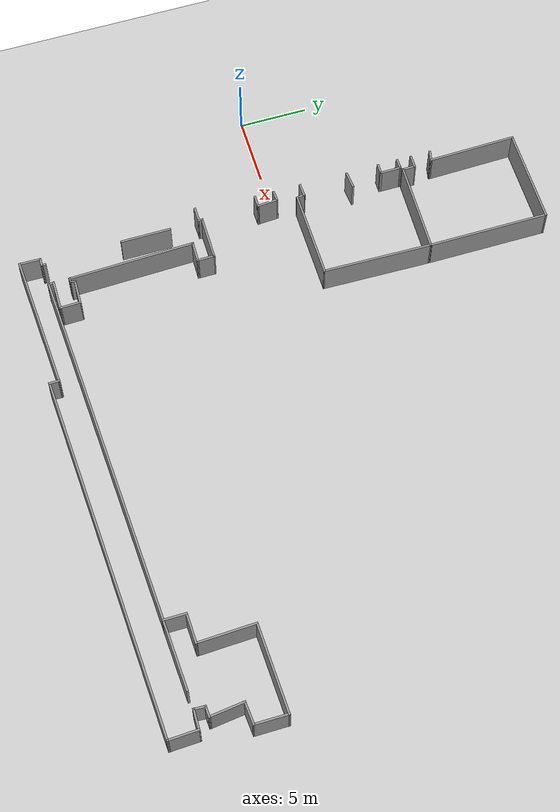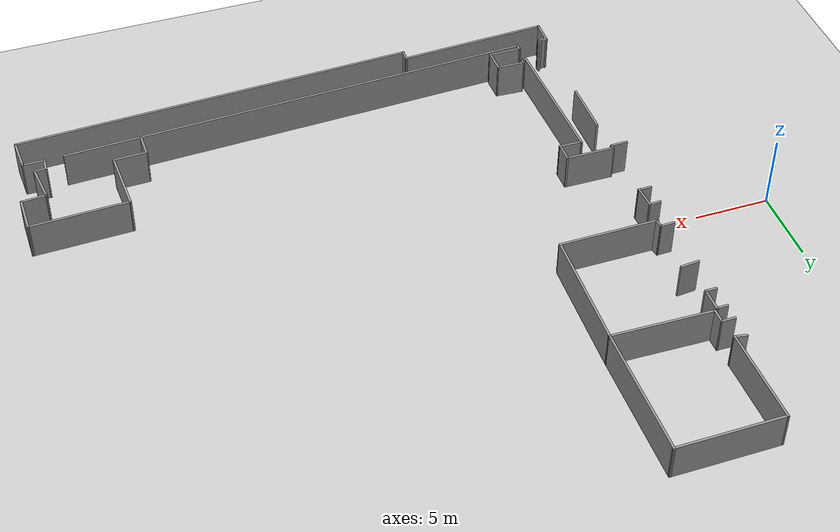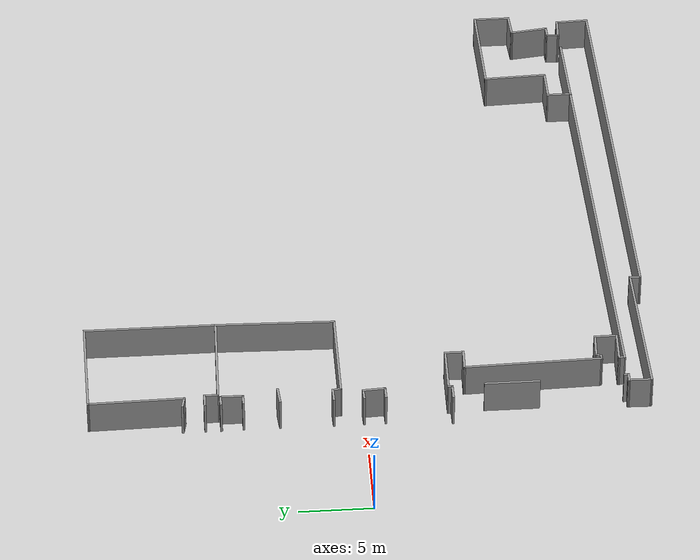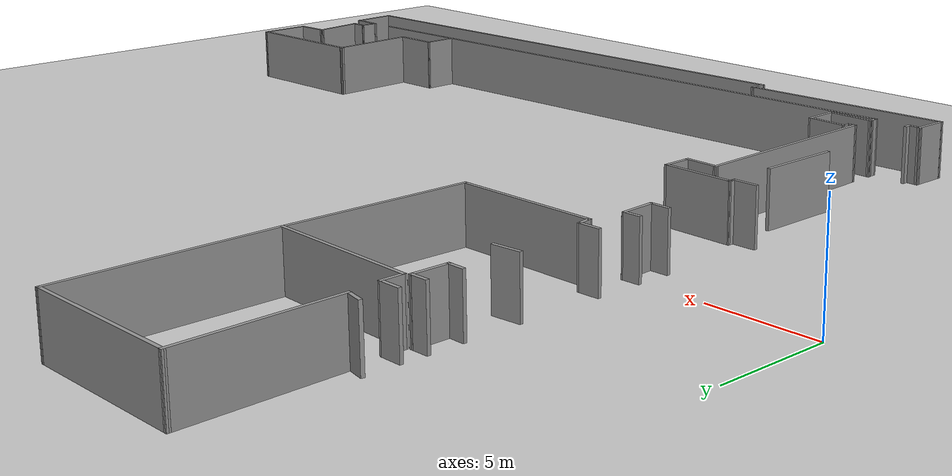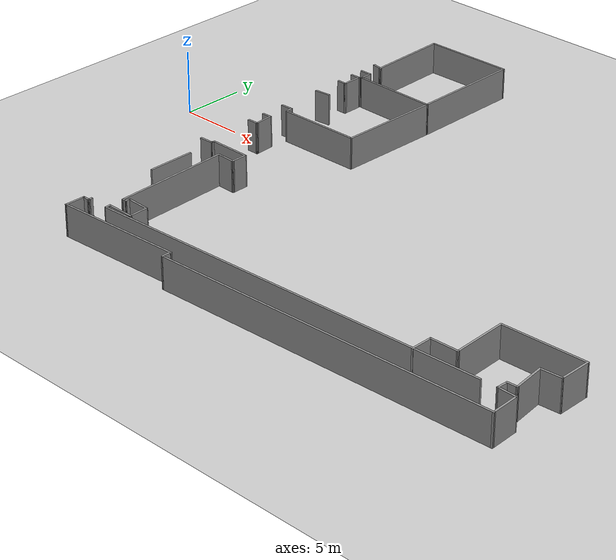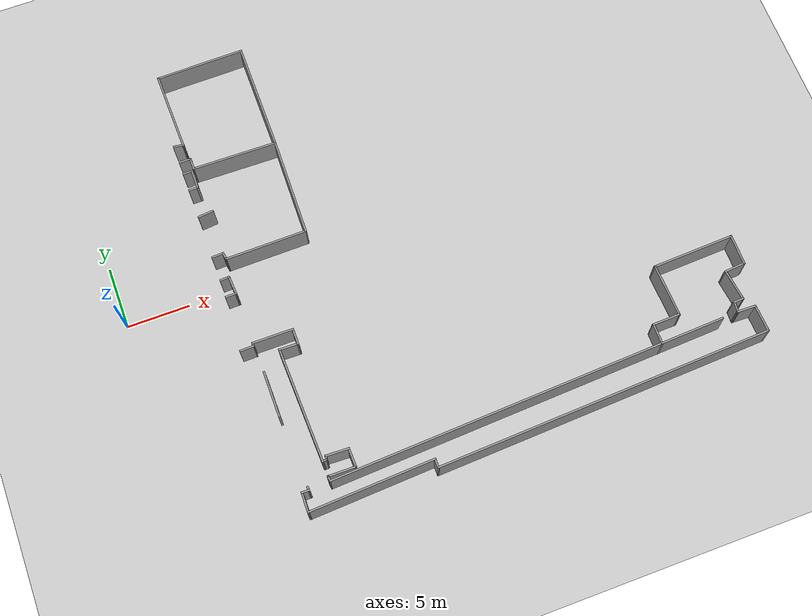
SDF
<sdf version="1.7">
 <world name="default">
  <model name="ground_plane">
   <static>1</static>
   <link name="link">
    <collision name="collision">
     <geometry><plane><normal>0 0 1</normal><size>100 100</size></plane></geometry>
     <surface>
      <contact><collide_bitmask>65535</collide_bitmask></contact>
      <friction><ode><mu>100</mu><mu2>50</mu2></ode></friction>
     </surface>
    </collision>
    <visual name="visual">
     <cast_shadows>0</cast_shadows>
     <geometry><plane><normal>0 0 1</normal><size>100 100</size></plane></geometry>
     <material>
      <script><uri>file://media/materials/scripts/gazebo.material</uri><name>Gazebo/Grey</name></script>
     </material>
    </visual>
   </link>
  </model>
  <model name="lab_world">
   <pose>21.9614 -0.359885 0 0 0 -1.57</pose>
   <link name="Wall_115">
    <collision name="Wall_115_Collision">
     <geometry><box><size>3.75 0.15 2.5</size></box></geometry>
     <pose>0 0 1.25 0 -0 0</pose>
    </collision>
    <visual name="Wall_115_Visual">
     <pose>0 0 1.25 0 -0 0</pose>
     <geometry><box><size>3.75 0.15 2.5</size></box></geometry>
     <material>
      <script><uri>file://media/materials/scripts/gazebo.material</uri><name>Gazebo/Grey</name></script>
      <ambient>1 1 1 1</ambient>
     </material>
     <meta><layer>0</layer></meta>
    </visual>
    <pose>9.39513 -13.2258 0 0 -0 0</pose>
   </link>
   <link name="Wall_126">
    <collision name="Wall_126_Collision">
     <geometry><box><size>0.393815 0.15 2.5</size></box></geometry>
     <pose>0 0 1.25 0 -0 0</pose>
    </collision>
    <visual name="Wall_126_Visual">
     <pose>0 0 1.25 0 -0 0</pose>
     <geometry><box><size>0.393815 0.15 2.5</size></box></geometry>
     <material>
      <script><uri>file://media/materials/scripts/gazebo.material</uri><name>Gazebo/Grey</name></script>
      <ambient>1 1 1 1</ambient>
     </material>
     <meta><layer>0</layer></meta>
    </visual>
    <pose>17.0854 -12.9723 0 0 -0 0.062419</pose>
   </link>
   <link name="Wall_127">
    <collision name="Wall_127_Collision">
     <geometry><box><size>0.682523 0.15 2.5</size></box></geometry>
     <pose>0 0 1.25 0 -0 0</pose>
    </collision>
    <visual name="Wall_127_Visual">
     <pose>0 0 1.25 0 -0 0</pose>
     <geometry><box><size>0.682523 0.15 2.5</size></box></geometry>
     <material>
      <script><uri>file://media/materials/scripts/gazebo.material</uri><name>Gazebo/Grey</name></script>
      <ambient>1 1 1 1</ambient>
     </material>
     <meta><layer>0</layer></meta>
    </visual>
    <pose>17.1995 -13.2308 0 0 -0 -1.59936</pose>
   </link>
   <link name="Wall_128">
    <collision name="Wall_128_Collision">
     <geometry><box><size>1.67156 0.15 2.5</size></box></geometry>
     <pose>0 0 1.25 0 -0 0</pose>
    </collision>
    <visual name="Wall_128_Visual">
     <pose>0 0 1.25 0 -0 0</pose>
     <geometry><box><size>1.67156 0.15 2.5</size></box></geometry>
     <material>
      <script><uri>file://media/materials/scripts/gazebo.material</uri><name>Gazebo/Grey</name></script>
      <ambient>1 1 1 1</ambient>
     </material>
     <meta><layer>0</layer></meta>
    </visual>
    <pose>17.9523 -13.5122 0 0 -0 -0.019997</pose>
   </link>
   <link name="Wall_133">
    <collision name="Wall_133_Collision">
     <geometry><box><size>0.941001 0.15 2.5</size></box></geometry>
     <pose>0 0 1.25 0 -0 0</pose>
    </collision>
    <visual name="Wall_133_Visual">
     <pose>0 0 1.25 0 -0 0</pose>
     <geometry><box><size>0.941001 0.15 2.5</size></box></geometry>
     <material>
      <script><uri>file://media/materials/scripts/gazebo.material</uri><name>Gazebo/Grey</name></script>
      <ambient>1 1 1 1</ambient>
     </material>
     <meta><layer>0</layer></meta>
    </visual>
    <pose>0.895679 -13.6643 0 0 -0 1.59003</pose>
   </link>
   <link name="Wall_134">
    <collision name="Wall_134_Collision">
     <geometry><box><size>1.61289 0.15 2.5</size></box></geometry>
     <pose>0 0 1.25 0 -0 0</pose>
    </collision>
    <visual name="Wall_134_Visual">
     <pose>0 0 1.25 0 -0 0</pose>
     <geometry><box><size>1.61289 0.15 2.5</size></box></geometry>
     <material>
      <script><uri>file://media/materials/scripts/gazebo.material</uri><name>Gazebo/Grey</name></script>
      <ambient>1 1 1 1</ambient>
     </material>
     <meta><layer>0</layer></meta>
    </visual>
    <pose>0.158054 -13.3145 0 0 -0 -3.07917</pose>
   </link>
   <link name="Wall_135">
    <collision name="Wall_135_Collision">
     <geometry><box><size>0.835913 0.15 2.5</size></box></geometry>
     <pose>0 0 1.25 0 -0 0</pose>
    </collision>
    <visual name="Wall_135_Visual">
     <pose>0 0 1.25 0 -0 0</pose>
     <geometry><box><size>0.835913 0.15 2.5</size></box></geometry>
     <material>
      <script><uri>file://media/materials/scripts/gazebo.material</uri><name>Gazebo/Grey</name></script>
      <ambient>1 1 1 1</ambient>
     </material>
     <meta><layer>0</layer></meta>
    </visual>
    <pose>-0.556757 -13.7023 0 0 -0 -1.52638</pose>
   </link>
   <link name="Wall_138">
    <collision name="Wall_138_Collision">
     <geometry><box><size>1.01743 0.15 2.5</size></box></geometry>
     <pose>0 0 1.25 0 -0 0</pose>
    </collision>
    <visual name="Wall_138_Visual">
     <pose>0 0 1.25 0 -0 0</pose>
     <geometry><box><size>1.01743 0.15 2.5</size></box></geometry>
     <material>
      <script><uri>file://media/materials/scripts/gazebo.material</uri><name>Gazebo/Grey</name></script>
      <ambient>1 1 1 1</ambient>
     </material>
     <meta><layer>0</layer></meta>
    </visual>
    <pose>-2.57952 -13.6263 0 0 -0 1.60587</pose>
   </link>
   <link name="Wall_139">
    <collision name="Wall_139_Collision">
     <geometry><box><size>0.690071 0.15 2.5</size></box></geometry>
     <pose>0 0 1.25 0 -0 0</pose>
    </collision>
    <visual name="Wall_139_Visual">
     <pose>0 0 1.25 0 -0 0</pose>
     <geometry><box><size>0.690071 0.15 2.5</size></box></geometry>
     <material>
      <script><uri>file://media/materials/scripts/gazebo.material</uri><name>Gazebo/Grey</name></script>
      <ambient>1 1 1 1</ambient>
     </material>
     <meta><layer>0</layer></meta>
    </visual>
    <pose>-2.32858 -13.1472 0 0 -0 0.169778</pose>
   </link>
   <link name="Wall_141">
    <collision name="Wall_141_Collision">
     <geometry><box><size>6.61417 0.15 2.5</size></box></geometry>
     <pose>0 0 1.25 0 -0 0</pose>
    </collision>
    <visual name="Wall_141_Visual">
     <pose>0 0 1.25 0 -0 0</pose>
     <geometry><box><size>6.61417 0.15 2.5</size></box></geometry>
     <material>
      <script><uri>file://media/materials/scripts/gazebo.material</uri><name>Gazebo/Grey</name></script>
      <ambient>1 1 1 1</ambient>
     </material>
     <meta><layer>0</layer></meta>
    </visual>
    <pose>-2.09284 -9.8697 0 0 -0 1.58021</pose>
   </link>
   <link name="Wall_142">
    <collision name="Wall_142_Collision">
     <geometry><box><size>8.15155 0.15 2.5</size></box></geometry>
     <pose>0 0 1.25 0 -0 0</pose>
    </collision>
    <visual name="Wall_142_Visual">
     <pose>0 0 1.25 0 -0 0</pose>
     <geometry><box><size>8.15155 0.15 2.5</size></box></geometry>
     <material>
      <script><uri>file://media/materials/scripts/gazebo.material</uri><name>Gazebo/Grey</name></script>
      <ambient>1 1 1 1</ambient>
     </material>
     <meta><layer>0</layer></meta>
    </visual>
    <pose>-6.12316 -6.5542 0 0 -0 3.12068</pose>
   </link>
   <link name="Wall_144">
    <collision name="Wall_144_Collision">
     <geometry><box><size>6.85846 0.15 2.5</size></box></geometry>
     <pose>0 0 1.25 0 -0 0</pose>
    </collision>
    <visual name="Wall_144_Visual">
     <pose>0 0 1.25 0 -0 0</pose>
     <geometry><box><size>6.85846 0.15 2.5</size></box></geometry>
     <material>
      <script><uri>file://media/materials/scripts/gazebo.material</uri><name>Gazebo/Grey</name></script>
      <ambient>1 1 1 1</ambient>
     </material>
     <meta><layer>0</layer></meta>
    </visual>
    <pose>-10.1839 -9.82408 0 0 -0 -1.58893</pose>
   </link>
   <link name="Wall_145">
    <collision name="Wall_145_Collision">
     <geometry><box><size>1.04744 0.15 2.5</size></box></geometry>
     <pose>0 0 1.25 0 -0 0</pose>
    </collision>
    <visual name="Wall_145_Visual">
     <pose>0 0 1.25 0 -0 0</pose>
     <geometry><box><size>1.04744 0.15 2.5</size></box></geometry>
     <material>
      <script><uri>file://media/materials/scripts/gazebo.material</uri><name>Gazebo/Grey</name></script>
      <ambient>1 1 1 1</ambient>
     </material>
     <meta><layer>0</layer></meta>
    </visual>
    <pose>-10.6934 -13.1852 0 0 -0 -3.12465</pose>
   </link>
   <link name="Wall_147">
    <collision name="Wall_147_Collision">
     <geometry><box><size>1 0.15 2.5</size></box></geometry>
     <pose>0 0 1.25 0 -0 0</pose>
    </collision>
    <visual name="Wall_147_Visual">
     <pose>0 0 1.25 0 -0 0</pose>
     <geometry><box><size>1 0.15 2.5</size></box></geometry>
     <material>
      <script><uri>file://media/materials/scripts/gazebo.material</uri><name>Gazebo/Grey</name></script>
      <ambient>1 1 1 1</ambient>
     </material>
     <meta><layer>0</layer></meta>
    </visual>
    <pose>-11.142 -13.6178 0 0 -0 -1.5708</pose>
   </link>
   <link name="Wall_149">
    <collision name="Wall_149_Collision">
     <geometry><box><size>0.835069 0.15 2.5</size></box></geometry>
     <pose>0 0 1.25 0 -0 0</pose>
    </collision>
    <visual name="Wall_149_Visual">
     <pose>0 0 1.25 0 -0 0</pose>
     <geometry><box><size>0.835069 0.15 2.5</size></box></geometry>
     <material>
      <script><uri>file://media/materials/scripts/gazebo.material</uri><name>Gazebo/Grey</name></script>
      <ambient>1 1 1 1</ambient>
     </material>
     <meta><layer>0</layer></meta>
    </visual>
    <pose>-10.085 -13.7175 0 0 -0 1.59302</pose>
   </link>
   <link name="Wall_150">
    <collision name="Wall_150_Collision">
     <geometry><box><size>1.65567 0.15 2.5</size></box></geometry>
     <pose>0 0 1.25 0 -0 0</pose>
    </collision>
    <visual name="Wall_150_Visual">
     <pose>0 0 1.25 0 -0 0</pose>
     <geometry><box><size>1.65567 0.15 2.5</size></box></geometry>
     <material>
      <script><uri>file://media/materials/scripts/gazebo.material</uri><name>Gazebo/Grey</name></script>
      <ambient>1 1 1 1</ambient>
     </material>
     <meta><layer>0</layer></meta>
    </visual>
    <pose>-9.33981 -13.3753 0 0 -0 0</pose>
   </link>
   <link name="Wall_151">
    <collision name="Wall_151_Collision">
     <geometry><box><size>0.819876 0.15 2.5</size></box></geometry>
     <pose>0 0 1.25 0 -0 0</pose>
    </collision>
    <visual name="Wall_151_Visual">
     <pose>0 0 1.25 0 -0 0</pose>
     <geometry><box><size>0.819876 0.15 2.5</size></box></geometry>
     <material>
      <script><uri>file://media/materials/scripts/gazebo.material</uri><name>Gazebo/Grey</name></script>
      <ambient>1 1 1 1</ambient>
     </material>
     <meta><layer>0</layer></meta>
    </visual>
    <pose>-8.58698 -13.7099 0 0 -0 -1.5708</pose>
   </link>
   <link name="Wall_153">
    <collision name="Wall_153_Collision">
     <geometry><box><size>1.29561 0.15 2.5</size></box></geometry>
     <pose>0 0 1.25 0 -0 0</pose>
    </collision>
    <visual name="Wall_153_Visual">
     <pose>0 0 1.25 0 -0 0</pose>
     <geometry><box><size>1.29561 0.15 2.5</size></box></geometry>
     <material>
      <script><uri>file://media/materials/scripts/gazebo.material</uri><name>Gazebo/Grey</name></script>
      <ambient>1 1 1 1</ambient>
     </material>
     <meta><layer>0</layer></meta>
    </visual>
    <pose>-6.20681 -13.459 0 0 -0 1.66386</pose>
   </link>
   <link name="Wall_155">
    <collision name="Wall_155_Collision">
     <geometry><box><size>9 0.15 2.5</size></box></geometry>
     <pose>0 0 1.25 0 -0 0</pose>
    </collision>
    <visual name="Wall_155_Visual">
     <pose>0 0 1.25 0 -0 0</pose>
     <geometry><box><size>9 0.15 2.5</size></box></geometry>
     <material>
      <script><uri>file://media/materials/scripts/gazebo.material</uri><name>Gazebo/Grey</name></script>
      <ambient>1 1 1 1</ambient>
     </material>
     <meta><layer>0</layer></meta>
    </visual>
    <pose>-14.5481 -6.47055 0 0 -0 3.14159</pose>
   </link>
   <link name="Wall_156">
    <collision name="Wall_156_Collision">
     <geometry><box><size>7.17684 0.15 2.5</size></box></geometry>
     <pose>0 0 1.25 0 -0 0</pose>
    </collision>
    <visual name="Wall_156_Visual">
     <pose>0 0 1.25 0 -0 0</pose>
     <geometry><box><size>7.17684 0.15 2.5</size></box></geometry>
     <material>
      <script><uri>file://media/materials/scripts/gazebo.material</uri><name>Gazebo/Grey</name></script>
      <ambient>1 1 1 1</ambient>
     </material>
     <meta><layer>0</layer></meta>
    </visual>
    <pose>-18.9358 -9.98377 0 0 -0 -1.56019</pose>
   </link>
   <link name="Wall_157">
    <collision name="Wall_157_Collision">
     <geometry><box><size>6.55435 0.15 2.5</size></box></geometry>
     <pose>0 0 1.25 0 -0 0</pose>
    </collision>
    <visual name="Wall_157_Visual">
     <pose>0 0 1.25 0 -0 0</pose>
     <geometry><box><size>6.55435 0.15 2.5</size></box></geometry>
     <material>
      <script><uri>file://media/materials/scripts/gazebo.material</uri><name>Gazebo/Grey</name></script>
      <ambient>1 1 1 1</ambient>
     </material>
     <meta><layer>0</layer></meta>
    </visual>
    <pose>-15.6971 -13.4286 0 0 -0 0.021374</pose>
   </link>
   <link name="Wall_159">
    <collision name="Wall_159_Collision">
     <geometry><box><size>0.877799 0.15 2.5</size></box></geometry>
     <pose>0 0 1.25 0 -0 0</pose>
    </collision>
    <visual name="Wall_159_Visual">
     <pose>0 0 1.25 0 -0 0</pose>
     <geometry><box><size>0.877799 0.15 2.5</size></box></geometry>
     <material>
      <script><uri>file://media/materials/scripts/gazebo.material</uri><name>Gazebo/Grey</name></script>
      <ambient>1 1 1 1</ambient>
     </material>
     <meta><layer>0</layer></meta>
    </visual>
    <pose>-12.5641 -13.7175 0 0 -0 -1.75999</pose>
   </link>
   <link name="Wall_192">
    <collision name="Wall_192_Collision">
     <geometry><box><size>1.16944 0.15 2.5</size></box></geometry>
     <pose>0 0 1.25 0 -0 0</pose>
    </collision>
    <visual name="Wall_192_Visual">
     <pose>0 0 1.25 0 -0 0</pose>
     <geometry><box><size>1.16944 0.15 2.5</size></box></geometry>
     <material>
      <script><uri>file://media/materials/scripts/gazebo.material</uri><name>Gazebo/Grey</name></script>
      <ambient>1 1 1 1</ambient>
     </material>
     <meta><layer>0</layer></meta>
    </visual>
    <pose>5.37309 -13.8455 0 0 -0 1.58572</pose>
   </link>
   <link name="Wall_193">
    <collision name="Wall_193_Collision">
     <geometry><box><size>0.393815 0.15 2.5</size></box></geometry>
     <pose>0 0 1.25 0 -0 0</pose>
    </collision>
    <visual name="Wall_193_Visual">
     <pose>0 0 1.25 0 -0 0</pose>
     <geometry><box><size>0.393815 0.15 2.5</size></box></geometry>
     <material>
      <script><uri>file://media/materials/scripts/gazebo.material</uri><name>Gazebo/Grey</name></script>
      <ambient>1 1 1 1</ambient>
     </material>
     <meta><layer>0</layer></meta>
    </visual>
    <pose>5.24382 -13.3284 0 0 -0 3.07917</pose>
   </link>
   <link name="Wall_194">
    <collision name="Wall_194_Collision">
     <geometry><box><size>3.34387 0.15 2.5</size></box></geometry>
     <pose>0 0 1.25 0 -0 0</pose>
    </collision>
    <visual name="Wall_194_Visual">
     <pose>0 0 1.25 0 -0 0</pose>
     <geometry><box><size>3.34387 0.15 2.5</size></box></geometry>
     <material>
      <script><uri>file://media/materials/scripts/gazebo.material</uri><name>Gazebo/Grey</name></script>
      <ambient>1 1 1 1</ambient>
     </material>
     <meta><layer>0</layer></meta>
    </visual>
    <pose>5.12975 -11.7239 0 0 -0 1.56603</pose>
   </link>
   <link name="Wall_195">
    <collision name="Wall_195_Collision">
     <geometry><box><size>1.36708 0.15 2.5</size></box></geometry>
     <pose>0 0 1.25 0 -0 0</pose>
    </collision>
    <visual name="Wall_195_Visual">
     <pose>0 0 1.25 0 -0 0</pose>
     <geometry><box><size>1.36708 0.15 2.5</size></box></geometry>
     <material>
      <script><uri>file://media/materials/scripts/gazebo.material</uri><name>Gazebo/Grey</name></script>
      <ambient>1 1 1 1</ambient>
     </material>
     <meta><layer>0</layer></meta>
    </visual>
    <pose>5.74571 -10.127 0 0 -0 0</pose>
   </link>
   <link name="Wall_196">
    <collision name="Wall_196_Collision">
     <geometry><box><size>1.61036 0.15 2.5</size></box></geometry>
     <pose>0 0 1.25 0 -0 0</pose>
    </collision>
    <visual name="Wall_196_Visual">
     <pose>0 0 1.25 0 -0 0</pose>
     <geometry><box><size>1.61036 0.15 2.5</size></box></geometry>
     <material>
      <script><uri>file://media/materials/scripts/gazebo.material</uri><name>Gazebo/Grey</name></script>
      <ambient>1 1 1 1</ambient>
     </material>
     <meta><layer>0</layer></meta>
    </visual>
    <pose>6.33885 -10.857 0 0 -0 -1.59163</pose>
   </link>
   <link name="Wall_197">
    <collision name="Wall_197_Collision">
     <geometry><box><size>9.38492 0.15 2.5</size></box></geometry>
     <pose>0 0 1.25 0 -0 0</pose>
    </collision>
    <visual name="Wall_197_Visual">
     <pose>0 0 1.25 0 -0 0</pose>
     <geometry><box><size>9.38492 0.15 2.5</size></box></geometry>
     <material>
      <script><uri>file://media/materials/scripts/gazebo.material</uri><name>Gazebo/Grey</name></script>
      <ambient>1 1 1 1</ambient>
     </material>
     <meta><layer>0</layer></meta>
    </visual>
    <pose>10.9395 -11.4577 0 0 -0 0.027999</pose>
   </link>
   <link name="Wall_198">
    <collision name="Wall_198_Collision">
     <geometry><box><size>0.439366 0.15 2.5</size></box></geometry>
     <pose>0 0 1.25 0 -0 0</pose>
    </collision>
    <visual name="Wall_198_Visual">
     <pose>0 0 1.25 0 -0 0</pose>
     <geometry><box><size>0.439366 0.15 2.5</size></box></geometry>
     <material>
      <script><uri>file://media/materials/scripts/gazebo.material</uri><name>Gazebo/Grey</name></script>
      <ambient>1 1 1 1</ambient>
     </material>
     <meta><layer>0</layer></meta>
    </visual>
    <pose>15.5477 -11.184 0 0 -0 1.62338</pose>
   </link>
   <link name="Wall_199">
    <collision name="Wall_199_Collision">
     <geometry><box><size>0.457578 0.15 2.5</size></box></geometry>
     <pose>0 0 1.25 0 -0 0</pose>
    </collision>
    <visual name="Wall_199_Visual">
     <pose>0 0 1.25 0 -0 0</pose>
     <geometry><box><size>0.457578 0.15 2.5</size></box></geometry>
     <material>
      <script><uri>file://media/materials/scripts/gazebo.material</uri><name>Gazebo/Grey</name></script>
      <ambient>1 1 1 1</ambient>
     </material>
     <meta><layer>0</layer></meta>
    </visual>
    <pose>15.3881 -11.0167 0 0 -0 2.9927</pose>
   </link>
   <link name="Wall_200">
    <collision name="Wall_200_Collision">
     <geometry><box><size>1.91585 0.15 2.5</size></box></geometry>
     <pose>0 0 1.25 0 -0 0</pose>
    </collision>
    <visual name="Wall_200_Visual">
     <pose>0 0 1.25 0 -0 0</pose>
     <geometry><box><size>1.91585 0.15 2.5</size></box></geometry>
     <material>
      <script><uri>file://media/materials/scripts/gazebo.material</uri><name>Gazebo/Grey</name></script>
      <ambient>1 1 1 1</ambient>
     </material>
     <meta><layer>0</layer></meta>
    </visual>
    <pose>15.274 -10.1118 0 0 -0 1.52772</pose>
   </link>
   <link name="Wall_202">
    <collision name="Wall_202_Collision">
     <geometry><box><size>1.61131 0.15 2.5</size></box></geometry>
     <pose>0 0 1.25 0 -0 0</pose>
    </collision>
    <visual name="Wall_202_Visual">
     <pose>0 0 1.25 0 -0 0</pose>
     <geometry><box><size>1.61131 0.15 2.5</size></box></geometry>
     <material>
      <script><uri>file://media/materials/scripts/gazebo.material</uri><name>Gazebo/Grey</name></script>
      <ambient>1 1 1 1</ambient>
     </material>
     <meta><layer>0</layer></meta>
    </visual>
    <pose>16.042 -9.21444 0 0 -0 0.02083</pose>
   </link>
   <link name="Wall_203">
    <collision name="Wall_203_Collision">
     <geometry><box><size>2.28009 0.15 2.5</size></box></geometry>
     <pose>0 0 1.25 0 -0 0</pose>
    </collision>
    <visual name="Wall_203_Visual">
     <pose>0 0 1.25 0 -0 0</pose>
     <geometry><box><size>2.28009 0.15 2.5</size></box></geometry>
     <material>
      <script><uri>file://media/materials/scripts/gazebo.material</uri><name>Gazebo/Grey</name></script>
      <ambient>1 1 1 1</ambient>
     </material>
     <meta><layer>0</layer></meta>
    </visual>
    <pose>16.7568 -10.2638 0 0 -0 -1.58508</pose>
   </link>
   <link name="Wall_204">
    <collision name="Wall_204_Collision">
     <geometry><box><size>0.516275 0.15 2.5</size></box></geometry>
     <pose>0 0 1.25 0 -0 0</pose>
    </collision>
    <visual name="Wall_204_Visual">
     <pose>0 0 1.25 0 -0 0</pose>
     <geometry><box><size>0.516275 0.15 2.5</size></box></geometry>
     <material>
      <script><uri>file://media/materials/scripts/gazebo.material</uri><name>Gazebo/Grey</name></script>
      <ambient>1 1 1 1</ambient>
     </material>
     <meta><layer>0</layer></meta>
    </visual>
    <pose>16.9241 -11.3132 0 0 -0 0.083141</pose>
   </link>
   <link name="Wall_207">
    <collision name="Wall_207_Collision">
     <geometry><box><size>10.1092 0.15 2.5</size></box></geometry>
     <pose>0 0 1.25 0 -0 0</pose>
    </collision>
    <visual name="Wall_207_Visual">
     <pose>0 0 1.25 0 -0 0</pose>
     <geometry><box><size>10.1092 0.15 2.5</size></box></geometry>
     <material>
      <script><uri>file://media/materials/scripts/gazebo.material</uri><name>Gazebo/Grey</name></script>
      <ambient>1 1 1 1</ambient>
     </material>
     <meta><layer>0</layer></meta>
    </visual>
    <pose>18.4859 -8.55297 0 0 -0 1.61637</pose>
   </link>
   <link name="Wall_208">
    <collision name="Wall_208_Collision">
     <geometry><box><size>0.834157 0.15 2.5</size></box></geometry>
     <pose>0 0 1.25 0 -0 0</pose>
    </collision>
    <visual name="Wall_208_Visual">
     <pose>0 0 1.25 0 -0 0</pose>
     <geometry><box><size>0.834157 0.15 2.5</size></box></geometry>
     <material>
      <script><uri>file://media/materials/scripts/gazebo.material</uri><name>Gazebo/Grey</name></script>
      <ambient>1 1 1 1</ambient>
     </material>
     <meta><layer>0</layer></meta>
    </visual>
    <pose>18.601 -3.57853 0 0 -0 0</pose>
   </link>
   <link name="Wall_210">
    <collision name="Wall_210_Collision">
     <geometry><box><size>27.2086 0.15 2.5</size></box></geometry>
     <pose>0 0 1.25 0 -0 0</pose>
    </collision>
    <visual name="Wall_210_Visual">
     <pose>0 0 1.25 0 -0 0</pose>
     <geometry><box><size>27.2086 0.15 2.5</size></box></geometry>
     <material>
      <script><uri>file://media/materials/scripts/gazebo.material</uri><name>Gazebo/Grey</name></script>
      <ambient>1 1 1 1</ambient>
     </material>
     <meta><layer>0</layer></meta>
    </visual>
    <pose>18.3937 9.93963 0 0 -0 1.6114</pose>
   </link>
   <link name="Wall_212">
    <collision name="Wall_212_Collision">
     <geometry><box><size>32.1076 0.15 2.5</size></box></geometry>
     <pose>0 0 1.25 0 -0 0</pose>
    </collision>
    <visual name="Wall_212_Visual">
     <pose>0 0 1.25 0 -0 0</pose>
     <geometry><box><size>32.1076 0.15 2.5</size></box></geometry>
     <material>
      <script><uri>file://media/materials/scripts/gazebo.material</uri><name>Gazebo/Grey</name></script>
      <ambient>1 1 1 1</ambient>
     </material>
     <meta><layer>0</layer></meta>
    </visual>
    <pose>16.4206 4.66558 0 0 -0 1.61374</pose>
   </link>
   <link name="Wall_214">
    <collision name="Wall_214_Collision">
     <geometry><box><size>2.28308 0.15 2.5</size></box></geometry>
     <pose>0 0 1.25 0 -0 0</pose>
    </collision>
    <visual name="Wall_214_Visual">
     <pose>0 0 1.25 0 -0 0</pose>
     <geometry><box><size>2.28308 0.15 2.5</size></box></geometry>
     <material>
      <script><uri>file://media/materials/scripts/gazebo.material</uri><name>Gazebo/Grey</name></script>
      <ambient>1 1 1 1</ambient>
     </material>
     <meta><layer>0</layer></meta>
    </visual>
    <pose>16.7795 23.4112 0 0 -0 -3.09789</pose>
   </link>
   <link name="Wall_215">
    <collision name="Wall_215_Collision">
     <geometry><box><size>1.55852 0.15 2.5</size></box></geometry>
     <pose>0 0 1.25 0 -0 0</pose>
    </collision>
    <visual name="Wall_215_Visual">
     <pose>0 0 1.25 0 -0 0</pose>
     <geometry><box><size>1.55852 0.15 2.5</size></box></geometry>
     <material>
      <script><uri>file://media/materials/scripts/gazebo.material</uri><name>Gazebo/Grey</name></script>
      <ambient>1 1 1 1</ambient>
     </material>
     <meta><layer>0</layer></meta>
    </visual>
    <pose>15.6944 22.6607 0 0 -0 -1.59936</pose>
   </link>
   <link name="Wall_216">
    <collision name="Wall_216_Collision">
     <geometry><box><size>0.93546 0.15 2.5</size></box></geometry>
     <pose>0 0 1.25 0 -0 0</pose>
    </collision>
    <visual name="Wall_216_Visual">
     <pose>0 0 1.25 0 -0 0</pose>
     <geometry><box><size>0.93546 0.15 2.5</size></box></geometry>
     <material>
      <script><uri>file://media/materials/scripts/gazebo.material</uri><name>Gazebo/Grey</name></script>
      <ambient>1 1 1 1</ambient>
     </material>
     <meta><layer>0</layer></meta>
    </visual>
    <pose>15.2821 21.9768 0 0 -0 3.09036</pose>
   </link>
   <link name="Wall_217">
    <collision name="Wall_217_Collision">
     <geometry><box><size>0.895289 0.15 2.5</size></box></geometry>
     <pose>0 0 1.25 0 -0 0</pose>
    </collision>
    <visual name="Wall_217_Visual">
     <pose>0 0 1.25 0 -0 0</pose>
     <geometry><box><size>0.895289 0.15 2.5</size></box></geometry>
     <material>
      <script><uri>file://media/materials/scripts/gazebo.material</uri><name>Gazebo/Grey</name></script>
      <ambient>1 1 1 1</ambient>
     </material>
     <meta><layer>0</layer></meta>
    </visual>
    <pose>14.8697 22.369 0 0 -0 1.6248</pose>
   </link>
   <link name="Wall_218">
    <collision name="Wall_218_Collision">
     <geometry><box><size>2.6423 0.15 2.5</size></box></geometry>
     <pose>0 0 1.25 0 -0 0</pose>
    </collision>
    <visual name="Wall_218_Visual">
     <pose>0 0 1.25 0 -0 0</pose>
     <geometry><box><size>2.6423 0.15 2.5</size></box></geometry>
     <material>
      <script><uri>file://media/materials/scripts/gazebo.material</uri><name>Gazebo/Grey</name></script>
      <ambient>1 1 1 1</ambient>
     </material>
     <meta><layer>0</layer></meta>
    </visual>
    <pose>13.6126 22.5903 0 0 -0 -3.02024</pose>
   </link>
   <link name="Wall_219">
    <collision name="Wall_219_Collision">
     <geometry><box><size>1.76361 0.15 2.5</size></box></geometry>
     <pose>0 0 1.25 0 -0 0</pose>
    </collision>
    <visual name="Wall_219_Visual">
     <pose>0 0 1.25 0 -0 0</pose>
     <geometry><box><size>1.76361 0.15 2.5</size></box></geometry>
     <material>
      <script><uri>file://media/materials/scripts/gazebo.material</uri><name>Gazebo/Grey</name></script>
      <ambient>1 1 1 1</ambient>
     </material>
     <meta><layer>0</layer></meta>
    </visual>
    <pose>12.3153 23.244 0 0 -0 1.64566</pose>
   </link>
   <link name="Wall_220">
    <collision name="Wall_220_Collision">
     <geometry><box><size>2.5436 0.15 2.5</size></box></geometry>
     <pose>0 0 1.25 0 -0 0</pose>
    </collision>
    <visual name="Wall_220_Visual">
     <pose>0 0 1.25 0 -0 0</pose>
     <geometry><box><size>2.5436 0.15 2.5</size></box></geometry>
     <material>
      <script><uri>file://media/materials/scripts/gazebo.material</uri><name>Gazebo/Grey</name></script>
      <ambient>1 1 1 1</ambient>
     </material>
     <meta><layer>0</layer></meta>
    </visual>
    <pose>11.0582 24.0485 0 0 -0 3.14159</pose>
   </link>
   <link name="Wall_221">
    <collision name="Wall_221_Collision">
     <geometry><box><size>6.67127 0.15 2.5</size></box></geometry>
     <pose>0 0 1.25 0 -0 0</pose>
    </collision>
    <visual name="Wall_221_Visual">
     <pose>0 0 1.25 0 -0 0</pose>
     <geometry><box><size>6.67127 0.15 2.5</size></box></geometry>
     <material>
      <script><uri>file://media/materials/scripts/gazebo.material</uri><name>Gazebo/Grey</name></script>
      <ambient>1 1 1 1</ambient>
     </material>
     <meta><layer>0</layer></meta>
    </visual>
    <pose>9.98213 20.7901 0 0 -0 -1.53378</pose>
   </link>
   <link name="Wall_222">
    <collision name="Wall_222_Collision">
     <geometry><box><size>4.35682 0.15 2.5</size></box></geometry>
     <pose>0 0 1.25 0 -0 0</pose>
    </collision>
    <visual name="Wall_222_Visual">
     <pose>0 0 1.25 0 -0 0</pose>
     <geometry><box><size>4.35682 0.15 2.5</size></box></geometry>
     <material>
      <script><uri>file://media/materials/scripts/gazebo.material</uri><name>Gazebo/Grey</name></script>
      <ambient>1 1 1 1</ambient>
     </material>
     <meta><layer>0</layer></meta>
    </visual>
    <pose>12.2047 17.6122 0 0 -0 0.038259</pose>
   </link>
   <link name="Wall_223">
    <collision name="Wall_223_Collision">
     <geometry><box><size>2.303 0.15 2.5</size></box></geometry>
     <pose>0 0 1.25 0 -0 0</pose>
    </collision>
    <visual name="Wall_223_Visual">
     <pose>0 0 1.25 0 -0 0</pose>
     <geometry><box><size>2.303 0.15 2.5</size></box></geometry>
     <material>
      <script><uri>file://media/materials/scripts/gazebo.material</uri><name>Gazebo/Grey</name></script>
      <ambient>1 1 1 1</ambient>
     </material>
     <meta><layer>0</layer></meta>
    </visual>
    <pose>14.3367 16.6165 0 0 -0 -1.54277</pose>
   </link>
   <link name="Wall_224">
    <collision name="Wall_224_Collision">
     <geometry><box><size>1.75 0.15 2.5</size></box></geometry>
     <pose>0 0 1.25 0 -0 0</pose>
    </collision>
    <visual name="Wall_224_Visual">
     <pose>0 0 1.25 0 -0 0</pose>
     <geometry><box><size>1.75 0.15 2.5</size></box></geometry>
     <material>
      <script><uri>file://media/materials/scripts/gazebo.material</uri><name>Gazebo/Grey</name></script>
      <ambient>1 1 1 1</ambient>
     </material>
     <meta><layer>0</layer></meta>
    </visual>
    <pose>15.1669 15.5405 0 0 -0 0</pose>
   </link>
   <static>1</static>
  </model>
 </world>
</sdf>
